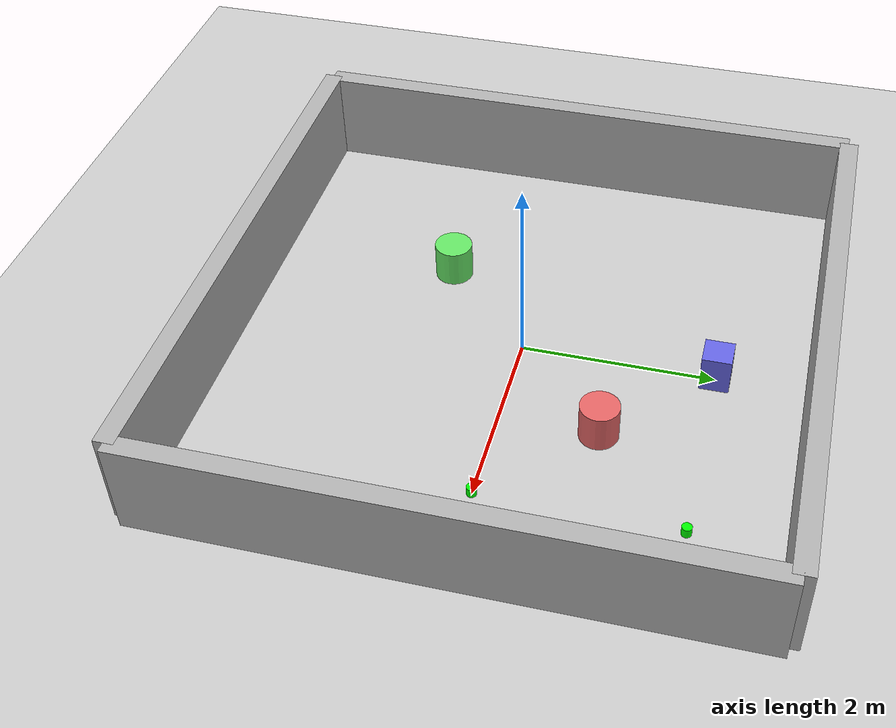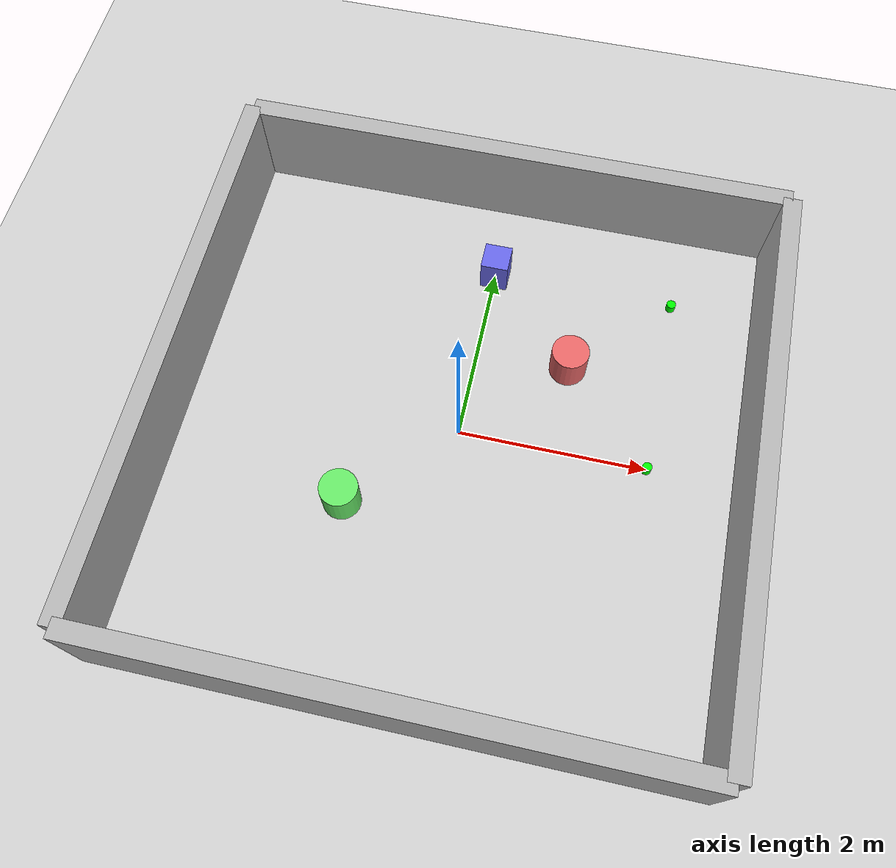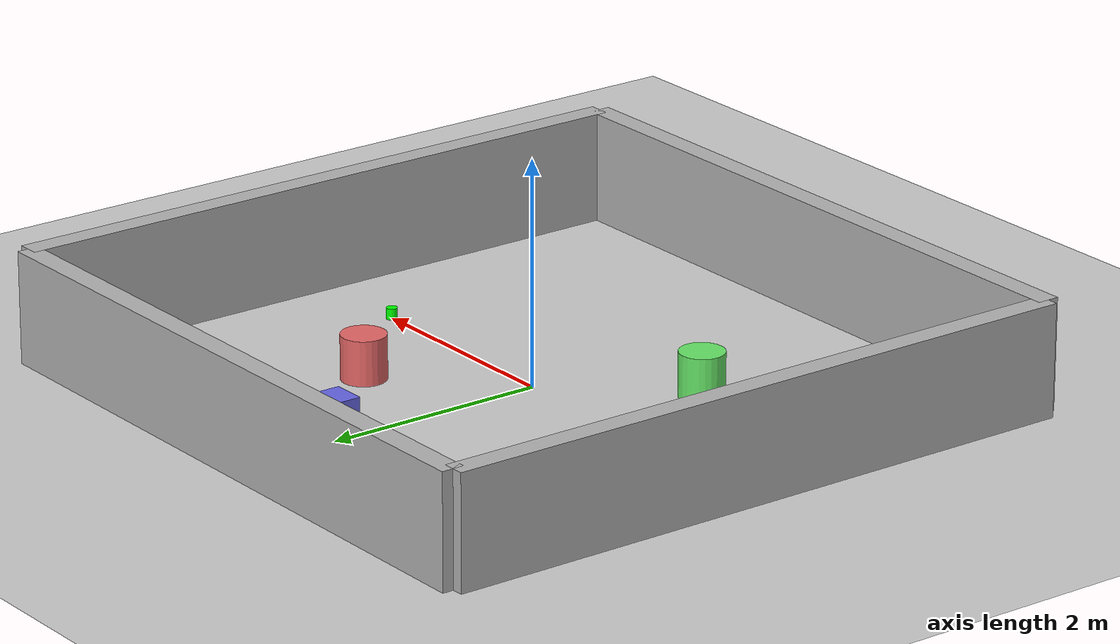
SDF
<?xml version="1.0" ?>
<sdf version="1.6">
  <world name="controller_world">
    <!-- Include ground plane -->
    <include>
      <uri>model://ground_plane</uri>
    </include>

    <!-- Include sun -->
    <include>
      <uri>model://sun</uri>
    </include>

    <!-- Boundary walls -->
    <model name="wall_north">
      <pose>0 3 0.5 0 0 0</pose>
      <link name="link">
        <collision name="collision">
          <geometry>
            <box>
              <size>6 0.2 1</size>
            </box>
          </geometry>
        </collision>
        <visual name="visual">
          <geometry>
            <box>
              <size>6 0.2 1</size>
            </box>
          </geometry>
          <material>
            <ambient>0.5 0.5 0.5 1</ambient>
            <diffuse>0.7 0.7 0.7 1</diffuse>
            <specular>0.1 0.1 0.1 1</specular>
          </material>
        </visual>
        <inertial>
          <mass>10.0</mass>
          <inertia>
            <ixx>8.383333</ixx>
            <ixy>0</ixy>
            <ixz>0</ixz>
            <iyy>18.333333</iyy>
            <iyz>0</iyz>
            <izz>26.666667</izz>
          </inertia>
        </inertial>
      </link>
    </model>

    <model name="wall_south">
      <pose>0 -3 0.5 0 0 0</pose>
      <link name="link">
        <collision name="collision">
          <geometry>
            <box>
              <size>6 0.2 1</size>
            </box>
          </geometry>
        </collision>
        <visual name="visual">
          <geometry>
            <box>
              <size>6 0.2 1</size>
            </box>
          </geometry>
          <material>
            <ambient>0.5 0.5 0.5 1</ambient>
            <diffuse>0.7 0.7 0.7 1</diffuse>
            <specular>0.1 0.1 0.1 1</specular>
          </material>
        </visual>
        <inertial>
          <mass>10.0</mass>
          <inertia>
            <ixx>8.383333</ixx>
            <ixy>0</ixy>
            <ixz>0</ixz>
            <iyy>18.333333</iyy>
            <iyz>0</iyz>
            <izz>26.666667</izz>
          </inertia>
        </inertial>
      </link>
    </model>

    <model name="wall_east">
      <pose>3 0 0.5 0 0 0</pose>
      <link name="link">
        <collision name="collision">
          <geometry>
            <box>
              <size>0.2 6 1</size>
            </box>
          </geometry>
        </collision>
        <visual name="visual">
          <geometry>
            <box>
              <size>0.2 6 1</size>
            </box>
          </geometry>
          <material>
            <ambient>0.5 0.5 0.5 1</ambient>
            <diffuse>0.7 0.7 0.7 1</diffuse>
            <specular>0.1 0.1 0.1 1</specular>
          </material>
        </visual>
        <inertial>
          <mass>10.0</mass>
          <inertia>
            <ixx>18.333333</ixx>
            <ixy>0</ixy>
            <ixz>0</ixz>
            <iyy>8.383333</iyy>
            <iyz>0</iyz>
            <izz>26.666667</izz>
          </inertia>
        </inertial>
      </link>
    </model>

    <model name="wall_west">
      <pose>-3 0 0.5 0 0 0</pose>
      <link name="link">
        <collision name="collision">
          <geometry>
            <box>
              <size>0.2 6 1</size>
            </box>
          </geometry>
        </collision>
        <visual name="visual">
          <geometry>
            <box>
              <size>0.2 6 1</size>
            </box>
          </geometry>
          <material>
            <ambient>0.5 0.5 0.5 1</ambient>
            <diffuse>0.7 0.7 0.7 1</diffuse>
            <specular>0.1 0.1 0.1 1</specular>
          </material>
        </visual>
        <inertial>
          <mass>10.0</mass>
          <inertia>
            <ixx>18.333333</ixx>
            <ixy>0</ixy>
            <ixz>0</ixz>
            <iyy>8.383333</iyy>
            <iyz>0</iyz>
            <izz>26.666667</izz>
          </inertia>
        </inertial>
      </link>
    </model>

    <!-- Obstacles for path following -->
    <model name="obstacle1">
      <pose>1 1 0.2 0 0 0</pose>
      <link name="link">
        <collision name="collision">
          <geometry>
            <cylinder>
              <radius>0.2</radius>
              <length>0.4</length>
            </cylinder>
          </geometry>
        </collision>
        <visual name="visual">
          <geometry>
            <cylinder>
              <radius>0.2</radius>
              <length>0.4</length>
            </cylinder>
          </geometry>
          <material>
            <ambient>0.8 0.3 0.3 1</ambient>
            <diffuse>0.9 0.4 0.4 1</diffuse>
            <specular>0.2 0.2 0.2 1</specular>
          </material>
        </visual>
        <inertial>
          <mass>1.0</mass>
          <inertia>
            <ixx>0.028333</ixx>
            <ixy>0</ixy>
            <ixz>0</ixz>
            <iyy>0.028333</iyy>
            <iyz>0</iyz>
            <izz>0.02</izz>
          </inertia>
        </inertial>
      </link>
    </model>

    <model name="obstacle2">
      <pose>-1 -1 0.2 0 0 0</pose>
      <link name="link">
        <collision name="collision">
          <geometry>
            <cylinder>
              <radius>0.2</radius>
              <length>0.4</length>
            </cylinder>
          </geometry>
        </collision>
        <visual name="visual">
          <geometry>
            <cylinder>
              <radius>0.2</radius>
              <length>0.4</length>
            </cylinder>
          </geometry>
          <material>
            <ambient>0.3 0.8 0.3 1</ambient>
            <diffuse>0.4 0.9 0.4 1</diffuse>
            <specular>0.2 0.2 0.2 1</specular>
          </material>
        </visual>
        <inertial>
          <mass>1.0</mass>
          <inertia>
            <ixx>0.028333</ixx>
            <ixy>0</ixy>
            <ixz>0</ixz>
            <iyy>0.028333</iyy>
            <iyz>0</iyz>
            <izz>0.02</izz>
          </inertia>
        </inertial>
      </link>
    </model>

    <model name="obstacle3">
      <pose>0 2 0.2 0 0 0</pose>
      <link name="link">
        <collision name="collision">
          <geometry>
            <box>
              <size>0.3 0.3 0.4</size>
            </box>
          </geometry>
        </collision>
        <visual name="visual">
          <geometry>
            <box>
              <size>0.3 0.3 0.4</size>
            </box>
          </geometry>
          <material>
            <ambient>0.3 0.3 0.8 1</ambient>
            <diffuse>0.4 0.4 0.9 1</diffuse>
            <specular>0.2 0.2 0.2 1</specular>
          </material>
        </visual>
        <inertial>
          <mass>1.0</mass>
          <inertia>
            <ixx>0.025833</ixx>
            <ixy>0</ixy>
            <ixz>0</ixz>
            <iyy>0.025833</iyy>
            <iyz>0</iyz>
            <izz>0.045</izz>
          </inertia>
        </inertial>
      </link>
    </model>

    <!-- Target markers for PID controller -->
    <model name="target1">
      <pose>2 0 0.05 0 0 0</pose>
      <link name="link">
        <visual name="visual">
          <geometry>
            <cylinder>
              <radius>0.05</radius>
              <length>0.1</length>
            </cylinder>
          </geometry>
          <material>
            <ambient>0.0 1.0 0.0 1</ambient>
            <diffuse>0.0 1.0 0.0 1</diffuse>
            <specular>0.2 0.2 0.2 1</specular>
          </material>
        </visual>
      </link>
    </model>

    <model name="target2">
      <pose>2 2 0.05 0 0 0</pose>
      <link name="link">
        <visual name="visual">
          <geometry>
            <cylinder>
              <radius>0.05</radius>
              <length>0.1</length>
            </cylinder>
          </geometry>
          <material>
            <ambient>0.0 1.0 0.0 1</ambient>
            <diffuse>0.0 1.0 0.0 1</diffuse>
            <specular>0.2 0.2 0.2 1</specular>
          </material>
        </visual>
      </link>
    </model>

    <model name="target3">
      <pose>0 2 0.05 0 0 0</pose>
      <link name="link">
        <visual name="visual">
          <geometry>
            <cylinder>
              <radius>0.05</radius>
              <length>0.1</length>
            </cylinder>
          </geometry>
          <material>
            <ambient>0.0 1.0 0.0 1</ambient>
            <diffuse>0.0 1.0 0.0 1</diffuse>
            <specular>0.2 0.2 0.2 1</specular>
          </material>
        </visual>
      </link>
    </model>

  </world>
</sdf>
